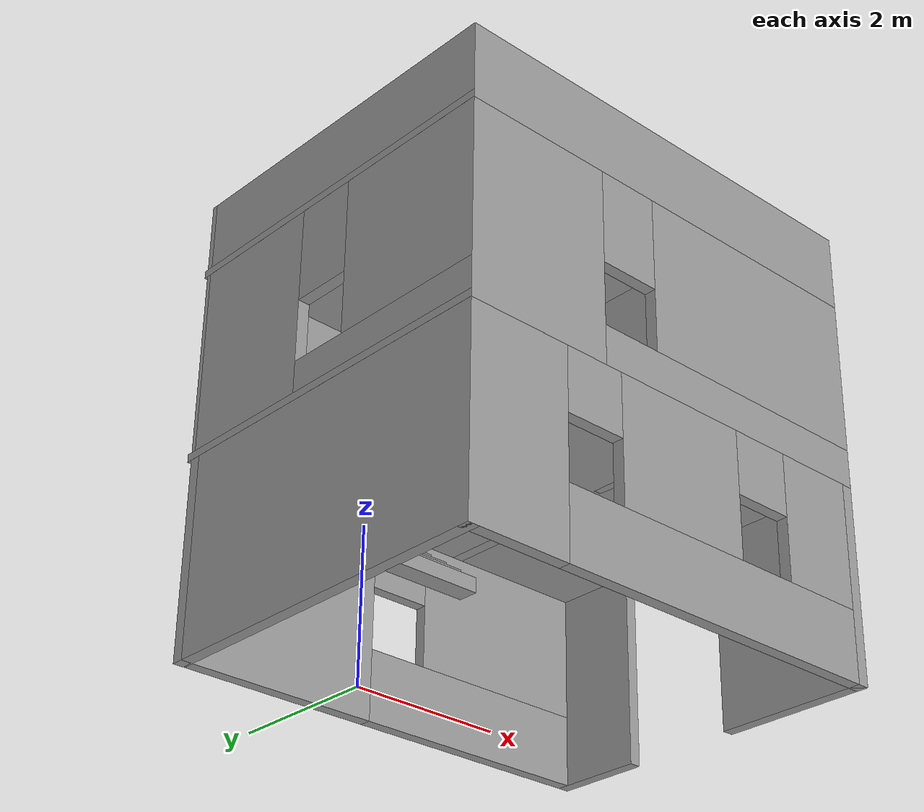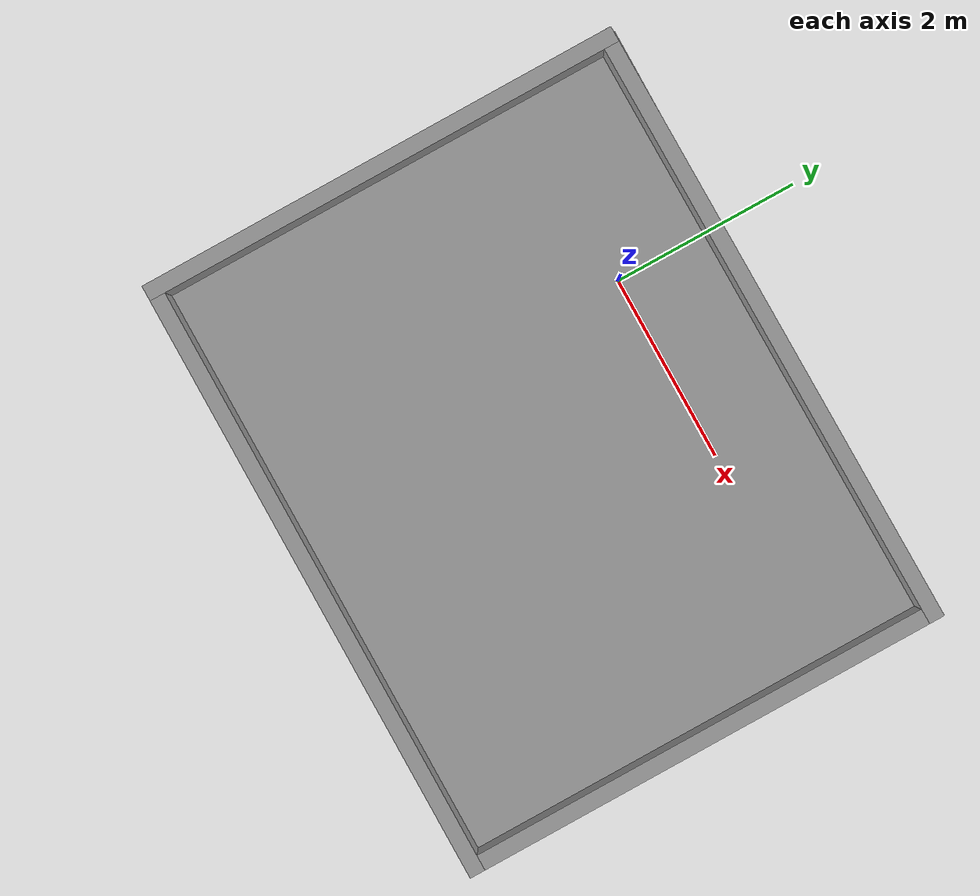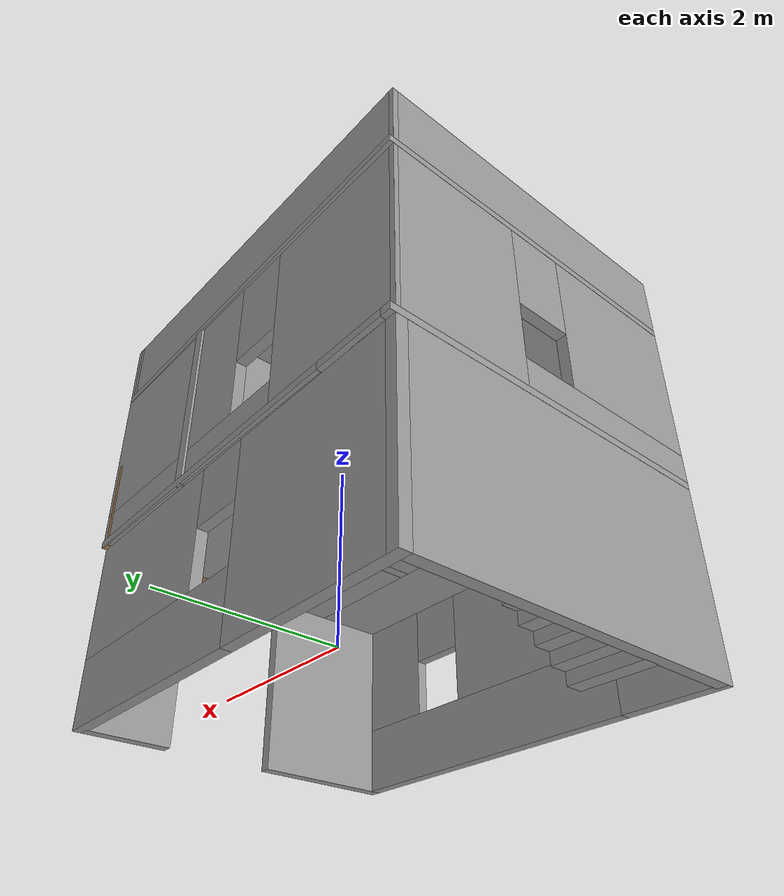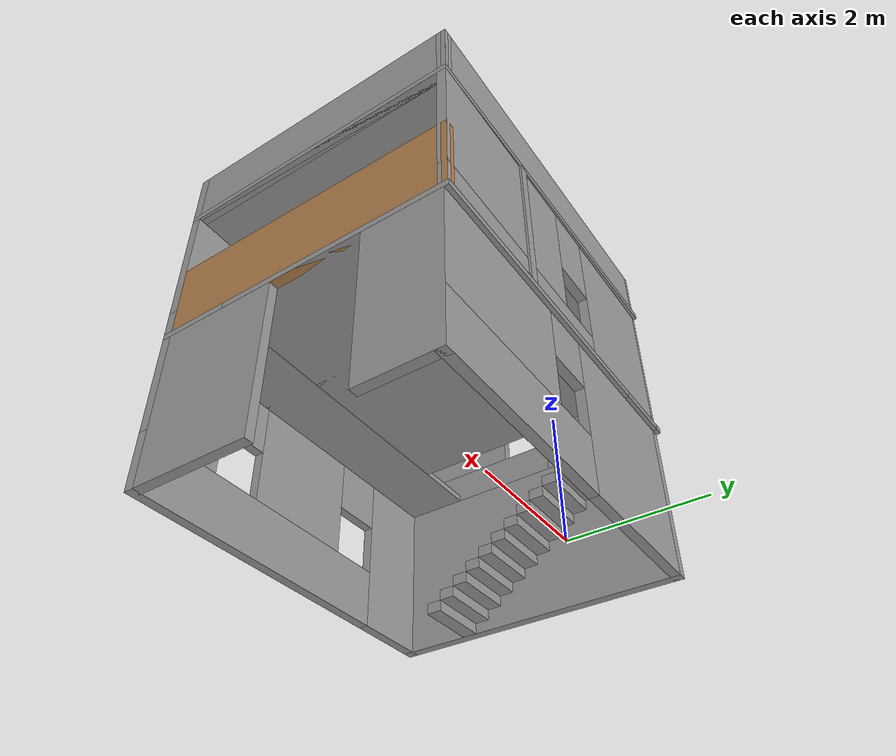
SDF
<?xml version='1.0'?>
<sdf version='1.7'>
  <model name='fahishahouse'>
    <pose>1.125 -1.47472 0 0 -0 0</pose>
    <link name='Floor_1'>
      <pose>0 0 2.5 0 -0 0</pose>
      <visual name='Floor_1_Visual_0'>
        <pose>-2.931 0 0.05 0 -0 0</pose>
        <geometry>
          <box>
            <size>0.139352 4.82055 0.1</size>
          </box>
        </geometry>
        <material>
          <script>
            <uri>file://media/materials/scripts/gazebo.material</uri>
            <name>Gazebo/Grey</name>
          </script>
          <ambient>1 1 1 1</ambient>
        </material>
        <meta>
          <layer>1</layer>
        </meta>
      </visual>
      <collision name='Floor_1_Collision_0'>
        <geometry>
          <box>
            <size>0.139352 4.82055 0.1</size>
          </box>
        </geometry>
        <pose>-2.931 0 0.05 0 -0 0</pose>
      </collision>
      <visual name='Floor_1_Visual_1'>
        <pose>0.069676 -1.84285 0.05 0 -0 0</pose>
        <geometry>
          <box>
            <size>5.862 1.13485 0.1</size>
          </box>
        </geometry>
        <material>
          <script>
            <uri>file://media/materials/scripts/gazebo.material</uri>
            <name>Gazebo/Grey</name>
          </script>
          <ambient>1 1 1 1</ambient>
        </material>
        <meta>
          <layer>1</layer>
        </meta>
      </visual>
      <collision name='Floor_1_Collision_1'>
        <geometry>
          <box>
            <size>5.862 1.13485 0.1</size>
          </box>
        </geometry>
        <pose>0.069676 -1.84285 0.05 0 -0 0</pose>
      </collision>
      <visual name='Floor_1_Visual_2'>
        <pose>0.569676 0.567426 0.05 0 -0 0</pose>
        <geometry>
          <box>
            <size>4.862 3.6857 0.1</size>
          </box>
        </geometry>
        <material>
          <script>
            <uri>file://media/materials/scripts/gazebo.material</uri>
            <name>Gazebo/Grey</name>
          </script>
          <ambient>1 1 1 1</ambient>
        </material>
        <meta>
          <layer>1</layer>
        </meta>
      </visual>
      <collision name='Floor_1_Collision_2'>
        <geometry>
          <box>
            <size>4.862 3.6857 0.1</size>
          </box>
        </geometry>
        <pose>0.569676 0.567426 0.05 0 -0 0</pose>
      </collision>
      <visual name='Floor_1_Visual_3'>
        <pose>-2.36132 2.31743 0.05 0 -0 0</pose>
        <geometry>
          <box>
            <size>1 0.185703 0.1</size>
          </box>
        </geometry>
        <material>
          <script>
            <uri>file://media/materials/scripts/gazebo.material</uri>
            <name>Gazebo/Grey</name>
          </script>
          <ambient>1 1 1 1</ambient>
        </material>
        <meta>
          <layer>1</layer>
        </meta>
      </visual>
      <collision name='Floor_1_Collision_3'>
        <geometry>
          <box>
            <size>1 0.185703 0.1</size>
          </box>
        </geometry>
        <pose>-2.36132 2.31743 0.05 0 -0 0</pose>
      </collision>
    </link>
    <link name='Floor_2'>
      <collision name='Floor_2_Collision'>
        <geometry>
          <box>
            <size>6.00135 4.80368 0.1</size>
          </box>
        </geometry>
        <pose>0 0 0.05 0 -0 0</pose>
      </collision>
      <visual name='Floor_2_Visual'>
        <pose>0 0 0.05 0 -0 0</pose>
        <geometry>
          <box>
            <size>6.00135 4.80368 0.1</size>
          </box>
        </geometry>
        <material>
          <script>
            <uri>file://media/materials/scripts/gazebo.material</uri>
            <name>Gazebo/Grey</name>
          </script>
          <ambient>1 1 1 1</ambient>
        </material>
        <meta>
          <layer>2</layer>
        </meta>
      </visual>
      <pose>0 -0.008439 5 0 -0 0</pose>
    </link>
    <link name='Stairs_0'>
      <visual name='Stairs_0_Visual_0'>
        <pose>-2.36132 -1.15876 0.083333 0 -0 -3.14159</pose>
        <geometry>
          <box>
            <size>1 0.233333 0.166667</size>
          </box>
        </geometry>
        <material>
          <script>
            <uri>file://media/materials/scripts/gazebo.material</uri>
            <name>Gazebo/Grey</name>
          </script>
          <ambient>1 1 1 1</ambient>
        </material>
        <meta>
          <layer>0</layer>
        </meta>
      </visual>
      <collision name='Stairs_0_Collision_0'>
        <geometry>
          <box>
            <size>1 0.233333 0.166667</size>
          </box>
        </geometry>
        <pose>-2.36132 -1.15876 0.083333 0 -0 -3.14159</pose>
      </collision>
      <visual name='Stairs_0_Visual_1'>
        <pose>-2.36132 -0.925426 0.25 0 -0 -3.14159</pose>
        <geometry>
          <box>
            <size>1 0.233333 0.166667</size>
          </box>
        </geometry>
        <material>
          <script>
            <uri>file://media/materials/scripts/gazebo.material</uri>
            <name>Gazebo/Grey</name>
          </script>
          <ambient>1 1 1 1</ambient>
        </material>
        <meta>
          <layer>0</layer>
        </meta>
      </visual>
      <collision name='Stairs_0_Collision_1'>
        <geometry>
          <box>
            <size>1 0.233333 0.166667</size>
          </box>
        </geometry>
        <pose>-2.36132 -0.925426 0.25 0 -0 -3.14159</pose>
      </collision>
      <visual name='Stairs_0_Visual_2'>
        <pose>-2.36132 -0.692092 0.416667 0 -0 -3.14159</pose>
        <geometry>
          <box>
            <size>1 0.233333 0.166667</size>
          </box>
        </geometry>
        <material>
          <script>
            <uri>file://media/materials/scripts/gazebo.material</uri>
            <name>Gazebo/Grey</name>
          </script>
          <ambient>1 1 1 1</ambient>
        </material>
        <meta>
          <layer>0</layer>
        </meta>
      </visual>
      <collision name='Stairs_0_Collision_2'>
        <geometry>
          <box>
            <size>1 0.233333 0.166667</size>
          </box>
        </geometry>
        <pose>-2.36132 -0.692092 0.416667 0 -0 -3.14159</pose>
      </collision>
      <visual name='Stairs_0_Visual_3'>
        <pose>-2.36132 -0.458759 0.583333 0 -0 -3.14159</pose>
        <geometry>
          <box>
            <size>1 0.233333 0.166667</size>
          </box>
        </geometry>
        <material>
          <script>
            <uri>file://media/materials/scripts/gazebo.material</uri>
            <name>Gazebo/Grey</name>
          </script>
          <ambient>1 1 1 1</ambient>
        </material>
        <meta>
          <layer>0</layer>
        </meta>
      </visual>
      <collision name='Stairs_0_Collision_3'>
        <geometry>
          <box>
            <size>1 0.233333 0.166667</size>
          </box>
        </geometry>
        <pose>-2.36132 -0.458759 0.583333 0 -0 -3.14159</pose>
      </collision>
      <visual name='Stairs_0_Visual_4'>
        <pose>-2.36132 -0.225426 0.75 0 -0 -3.14159</pose>
        <geometry>
          <box>
            <size>1 0.233333 0.166667</size>
          </box>
        </geometry>
        <material>
          <script>
            <uri>file://media/materials/scripts/gazebo.material</uri>
            <name>Gazebo/Grey</name>
          </script>
          <ambient>1 1 1 1</ambient>
        </material>
        <meta>
          <layer>0</layer>
        </meta>
      </visual>
      <collision name='Stairs_0_Collision_4'>
        <geometry>
          <box>
            <size>1 0.233333 0.166667</size>
          </box>
        </geometry>
        <pose>-2.36132 -0.225426 0.75 0 -0 -3.14159</pose>
      </collision>
      <visual name='Stairs_0_Visual_5'>
        <pose>-2.36132 0.007908 0.916667 0 -0 -3.14159</pose>
        <geometry>
          <box>
            <size>1 0.233333 0.166667</size>
          </box>
        </geometry>
        <material>
          <script>
            <uri>file://media/materials/scripts/gazebo.material</uri>
            <name>Gazebo/Grey</name>
          </script>
          <ambient>1 1 1 1</ambient>
        </material>
        <meta>
          <layer>0</layer>
        </meta>
      </visual>
      <collision name='Stairs_0_Collision_5'>
        <geometry>
          <box>
            <size>1 0.233333 0.166667</size>
          </box>
        </geometry>
        <pose>-2.36132 0.007908 0.916667 0 -0 -3.14159</pose>
      </collision>
      <visual name='Stairs_0_Visual_6'>
        <pose>-2.36132 0.241241 1.08333 0 -0 -3.14159</pose>
        <geometry>
          <box>
            <size>1 0.233333 0.166667</size>
          </box>
        </geometry>
        <material>
          <script>
            <uri>file://media/materials/scripts/gazebo.material</uri>
            <name>Gazebo/Grey</name>
          </script>
          <ambient>1 1 1 1</ambient>
        </material>
        <meta>
          <layer>0</layer>
        </meta>
      </visual>
      <collision name='Stairs_0_Collision_6'>
        <geometry>
          <box>
            <size>1 0.233333 0.166667</size>
          </box>
        </geometry>
        <pose>-2.36132 0.241241 1.08333 0 -0 -3.14159</pose>
      </collision>
      <visual name='Stairs_0_Visual_7'>
        <pose>-2.36132 0.474574 1.25 0 -0 -3.14159</pose>
        <geometry>
          <box>
            <size>1 0.233333 0.166667</size>
          </box>
        </geometry>
        <material>
          <script>
            <uri>file://media/materials/scripts/gazebo.material</uri>
            <name>Gazebo/Grey</name>
          </script>
          <ambient>1 1 1 1</ambient>
        </material>
        <meta>
          <layer>0</layer>
        </meta>
      </visual>
      <collision name='Stairs_0_Collision_7'>
        <geometry>
          <box>
            <size>1 0.233333 0.166667</size>
          </box>
        </geometry>
        <pose>-2.36132 0.474574 1.25 0 -0 -3.14159</pose>
      </collision>
      <visual name='Stairs_0_Visual_8'>
        <pose>-2.36132 0.707908 1.41667 0 -0 -3.14159</pose>
        <geometry>
          <box>
            <size>1 0.233333 0.166667</size>
          </box>
        </geometry>
        <material>
          <script>
            <uri>file://media/materials/scripts/gazebo.material</uri>
            <name>Gazebo/Grey</name>
          </script>
          <ambient>1 1 1 1</ambient>
        </material>
        <meta>
          <layer>0</layer>
        </meta>
      </visual>
      <collision name='Stairs_0_Collision_8'>
        <geometry>
          <box>
            <size>1 0.233333 0.166667</size>
          </box>
        </geometry>
        <pose>-2.36132 0.707908 1.41667 0 -0 -3.14159</pose>
      </collision>
      <visual name='Stairs_0_Visual_9'>
        <pose>-2.36132 0.941241 1.58333 0 -0 -3.14159</pose>
        <geometry>
          <box>
            <size>1 0.233333 0.166667</size>
          </box>
        </geometry>
        <material>
          <script>
            <uri>file://media/materials/scripts/gazebo.material</uri>
            <name>Gazebo/Grey</name>
          </script>
          <ambient>1 1 1 1</ambient>
        </material>
        <meta>
          <layer>0</layer>
        </meta>
      </visual>
      <collision name='Stairs_0_Collision_9'>
        <geometry>
          <box>
            <size>1 0.233333 0.166667</size>
          </box>
        </geometry>
        <pose>-2.36132 0.941241 1.58333 0 -0 -3.14159</pose>
      </collision>
      <visual name='Stairs_0_Visual_10'>
        <pose>-2.36132 1.17457 1.75 0 -0 -3.14159</pose>
        <geometry>
          <box>
            <size>1 0.233333 0.166667</size>
          </box>
        </geometry>
        <material>
          <script>
            <uri>file://media/materials/scripts/gazebo.material</uri>
            <name>Gazebo/Grey</name>
          </script>
          <ambient>1 1 1 1</ambient>
        </material>
        <meta>
          <layer>0</layer>
        </meta>
      </visual>
      <collision name='Stairs_0_Collision_10'>
        <geometry>
          <box>
            <size>1 0.233333 0.166667</size>
          </box>
        </geometry>
        <pose>-2.36132 1.17457 1.75 0 -0 -3.14159</pose>
      </collision>
      <visual name='Stairs_0_Visual_11'>
        <pose>-2.36132 1.40791 1.91667 0 -0 -3.14159</pose>
        <geometry>
          <box>
            <size>1 0.233333 0.166667</size>
          </box>
        </geometry>
        <material>
          <script>
            <uri>file://media/materials/scripts/gazebo.material</uri>
            <name>Gazebo/Grey</name>
          </script>
          <ambient>1 1 1 1</ambient>
        </material>
        <meta>
          <layer>0</layer>
        </meta>
      </visual>
      <collision name='Stairs_0_Collision_11'>
        <geometry>
          <box>
            <size>1 0.233333 0.166667</size>
          </box>
        </geometry>
        <pose>-2.36132 1.40791 1.91667 0 -0 -3.14159</pose>
      </collision>
      <visual name='Stairs_0_Visual_12'>
        <pose>-2.36132 1.64124 2.08333 0 -0 -3.14159</pose>
        <geometry>
          <box>
            <size>1 0.233333 0.166667</size>
          </box>
        </geometry>
        <material>
          <script>
            <uri>file://media/materials/scripts/gazebo.material</uri>
            <name>Gazebo/Grey</name>
          </script>
          <ambient>1 1 1 1</ambient>
        </material>
        <meta>
          <layer>0</layer>
        </meta>
      </visual>
      <collision name='Stairs_0_Collision_12'>
        <geometry>
          <box>
            <size>1 0.233333 0.166667</size>
          </box>
        </geometry>
        <pose>-2.36132 1.64124 2.08333 0 -0 -3.14159</pose>
      </collision>
      <visual name='Stairs_0_Visual_13'>
        <pose>-2.36132 1.87457 2.25 0 -0 -3.14159</pose>
        <geometry>
          <box>
            <size>1 0.233333 0.166667</size>
          </box>
        </geometry>
        <material>
          <script>
            <uri>file://media/materials/scripts/gazebo.material</uri>
            <name>Gazebo/Grey</name>
          </script>
          <ambient>1 1 1 1</ambient>
        </material>
        <meta>
          <layer>0</layer>
        </meta>
      </visual>
      <collision name='Stairs_0_Collision_13'>
        <geometry>
          <box>
            <size>1 0.233333 0.166667</size>
          </box>
        </geometry>
        <pose>-2.36132 1.87457 2.25 0 -0 -3.14159</pose>
      </collision>
      <visual name='Stairs_0_Visual_14'>
        <pose>-2.36132 2.10791 2.41667 0 -0 -3.14159</pose>
        <geometry>
          <box>
            <size>1 0.233333 0.166667</size>
          </box>
        </geometry>
        <material>
          <script>
            <uri>file://media/materials/scripts/gazebo.material</uri>
            <name>Gazebo/Grey</name>
          </script>
          <ambient>1 1 1 1</ambient>
        </material>
        <meta>
          <layer>0</layer>
        </meta>
      </visual>
      <collision name='Stairs_0_Collision_14'>
        <geometry>
          <box>
            <size>1 0.233333 0.166667</size>
          </box>
        </geometry>
        <pose>-2.36132 2.10791 2.41667 0 -0 -3.14159</pose>
      </collision>
    </link>
    <link name='Wall_1'>
      <collision name='Wall_1_Collision'>
        <geometry>
          <box>
            <size>4.75 0.15 2.5</size>
          </box>
        </geometry>
        <pose>0 0 1.25 0 -0 0</pose>
      </collision>
      <visual name='Wall_1_Visual'>
        <pose>0 0 1.25 0 -0 0</pose>
        <geometry>
          <box>
            <size>4.75 0.15 2.5</size>
          </box>
        </geometry>
        <material>
          <script>
            <uri>file://media/materials/scripts/gazebo.material</uri>
            <name>Gazebo/Grey</name>
          </script>
          <ambient>1 1 1 1</ambient>
        </material>
        <meta>
          <layer>0</layer>
        </meta>
      </visual>
      <pose>-2.925 -0.035278 0 0 -0 -1.5708</pose>
    </link>
    <link name='Wall_11'>
      <pose>-2.925 -0.035278 2.5 0 -0 -1.5708</pose>
      <visual name='Wall_11_Visual_0'>
        <pose>-1.44185 0 1.25 0 -0 0</pose>
        <geometry>
          <box>
            <size>1.8663 0.15 2.5</size>
          </box>
        </geometry>
        <material>
          <script>
            <uri>file://media/materials/scripts/gazebo.material</uri>
            <name>Gazebo/Grey</name>
          </script>
          <ambient>1 1 1 1</ambient>
        </material>
        <meta>
          <layer>1</layer>
        </meta>
      </visual>
      <collision name='Wall_11_Collision_0'>
        <geometry>
          <box>
            <size>1.8663 0.15 2.5</size>
          </box>
        </geometry>
        <pose>-1.44185 0 1.25 0 -0 0</pose>
      </collision>
      <visual name='Wall_11_Visual_1'>
        <pose>0.93315 0 0.25 0 -0 0</pose>
        <geometry>
          <box>
            <size>2.8837 0.15 0.5</size>
          </box>
        </geometry>
        <material>
          <script>
            <uri>file://media/materials/scripts/gazebo.material</uri>
            <name>Gazebo/Grey</name>
          </script>
          <ambient>1 1 1 1</ambient>
        </material>
        <meta>
          <layer>1</layer>
        </meta>
      </visual>
      <collision name='Wall_11_Collision_1'>
        <geometry>
          <box>
            <size>2.8837 0.15 0.5</size>
          </box>
        </geometry>
        <pose>0.93315 0 0.25 0 -0 0</pose>
      </collision>
      <visual name='Wall_11_Visual_2'>
        <pose>1.33315 0 1.5 0 -0 0</pose>
        <geometry>
          <box>
            <size>2.0837 0.15 2</size>
          </box>
        </geometry>
        <material>
          <script>
            <uri>file://media/materials/scripts/gazebo.material</uri>
            <name>Gazebo/Grey</name>
          </script>
          <ambient>1 1 1 1</ambient>
        </material>
        <meta>
          <layer>1</layer>
        </meta>
      </visual>
      <collision name='Wall_11_Collision_2'>
        <geometry>
          <box>
            <size>2.0837 0.15 2</size>
          </box>
        </geometry>
        <pose>1.33315 0 1.5 0 -0 0</pose>
      </collision>
      <visual name='Wall_11_Visual_3'>
        <pose>-0.108699 0 1.9 0 -0 0</pose>
        <geometry>
          <box>
            <size>0.8 0.15 1.2</size>
          </box>
        </geometry>
        <material>
          <script>
            <uri>file://media/materials/scripts/gazebo.material</uri>
            <name>Gazebo/Grey</name>
          </script>
          <ambient>1 1 1 1</ambient>
        </material>
        <meta>
          <layer>1</layer>
        </meta>
      </visual>
      <collision name='Wall_11_Collision_3'>
        <geometry>
          <box>
            <size>0.8 0.15 1.2</size>
          </box>
        </geometry>
        <pose>-0.108699 0 1.9 0 -0 0</pose>
      </collision>
    </link>
    <link name='Wall_12'>
      <pose>0 -2.33528 2.5 0 -0 0</pose>
      <visual name='Wall_12_Visual_0'>
        <pose>-2.03885 0 1.25 0 -0 0</pose>
        <geometry>
          <box>
            <size>1.9223 0.15 2.5</size>
          </box>
        </geometry>
        <material>
          <script>
            <uri>file://media/materials/scripts/gazebo.material</uri>
            <name>Gazebo/Grey</name>
          </script>
          <ambient>1 1 1 1</ambient>
        </material>
        <meta>
          <layer>1</layer>
        </meta>
      </visual>
      <collision name='Wall_12_Collision_0'>
        <geometry>
          <box>
            <size>1.9223 0.15 2.5</size>
          </box>
        </geometry>
        <pose>-2.03885 0 1.25 0 -0 0</pose>
      </collision>
      <visual name='Wall_12_Visual_1'>
        <pose>0.96115 0 0.25 0 -0 0</pose>
        <geometry>
          <box>
            <size>4.0777 0.15 0.5</size>
          </box>
        </geometry>
        <material>
          <script>
            <uri>file://media/materials/scripts/gazebo.material</uri>
            <name>Gazebo/Grey</name>
          </script>
          <ambient>1 1 1 1</ambient>
        </material>
        <meta>
          <layer>1</layer>
        </meta>
      </visual>
      <collision name='Wall_12_Collision_1'>
        <geometry>
          <box>
            <size>4.0777 0.15 0.5</size>
          </box>
        </geometry>
        <pose>0.96115 0 0.25 0 -0 0</pose>
      </collision>
      <visual name='Wall_12_Visual_2'>
        <pose>1.36115 0 1.5 0 -0 0</pose>
        <geometry>
          <box>
            <size>3.2777 0.15 2</size>
          </box>
        </geometry>
        <material>
          <script>
            <uri>file://media/materials/scripts/gazebo.material</uri>
            <name>Gazebo/Grey</name>
          </script>
          <ambient>1 1 1 1</ambient>
        </material>
        <meta>
          <layer>1</layer>
        </meta>
      </visual>
      <collision name='Wall_12_Collision_2'>
        <geometry>
          <box>
            <size>3.2777 0.15 2</size>
          </box>
        </geometry>
        <pose>1.36115 0 1.5 0 -0 0</pose>
      </collision>
      <visual name='Wall_12_Visual_3'>
        <pose>-0.677699 0 1.9 0 -0 0</pose>
        <geometry>
          <box>
            <size>0.8 0.15 1.2</size>
          </box>
        </geometry>
        <material>
          <script>
            <uri>file://media/materials/scripts/gazebo.material</uri>
            <name>Gazebo/Grey</name>
          </script>
          <ambient>1 1 1 1</ambient>
        </material>
        <meta>
          <layer>1</layer>
        </meta>
      </visual>
      <collision name='Wall_12_Collision_3'>
        <geometry>
          <box>
            <size>0.8 0.15 1.2</size>
          </box>
        </geometry>
        <pose>-0.677699 0 1.9 0 -0 0</pose>
      </collision>
    </link>
    <link name='Wall_13'>
      <pose>0 2.29122 2.5 0 -0 0.00906</pose>
      <visual name='Wall_13_Visual_0'>
        <pose>-1.94671 0 1.25 0 -0 0</pose>
        <geometry>
          <box>
            <size>2.10659 0.15 2.5</size>
          </box>
        </geometry>
        <material>
          <script>
            <uri>file://media/materials/scripts/gazebo.material</uri>
            <name>Gazebo/Grey</name>
          </script>
          <ambient>1 1 1 1</ambient>
        </material>
        <meta>
          <layer>1</layer>
        </meta>
      </visual>
      <collision name='Wall_13_Collision_0'>
        <geometry>
          <box>
            <size>2.10659 0.15 2.5</size>
          </box>
        </geometry>
        <pose>-1.94671 0 1.25 0 -0 0</pose>
      </collision>
      <visual name='Wall_13_Visual_1'>
        <pose>1.05329 0 0.25 0 -0 0</pose>
        <geometry>
          <box>
            <size>3.89341 0.15 0.5</size>
          </box>
        </geometry>
        <material>
          <script>
            <uri>file://media/materials/scripts/gazebo.material</uri>
            <name>Gazebo/Grey</name>
          </script>
          <ambient>1 1 1 1</ambient>
        </material>
        <meta>
          <layer>1</layer>
        </meta>
      </visual>
      <collision name='Wall_13_Collision_1'>
        <geometry>
          <box>
            <size>3.89341 0.15 0.5</size>
          </box>
        </geometry>
        <pose>1.05329 0 0.25 0 -0 0</pose>
      </collision>
      <visual name='Wall_13_Visual_2'>
        <pose>1.45329 0 1.5 0 -0 0</pose>
        <geometry>
          <box>
            <size>3.09341 0.15 2</size>
          </box>
        </geometry>
        <material>
          <script>
            <uri>file://media/materials/scripts/gazebo.material</uri>
            <name>Gazebo/Grey</name>
          </script>
          <ambient>1 1 1 1</ambient>
        </material>
        <meta>
          <layer>1</layer>
        </meta>
      </visual>
      <collision name='Wall_13_Collision_2'>
        <geometry>
          <box>
            <size>3.09341 0.15 2</size>
          </box>
        </geometry>
        <pose>1.45329 0 1.5 0 -0 0</pose>
      </collision>
      <visual name='Wall_13_Visual_3'>
        <pose>-0.493414 0 1.9 0 -0 0</pose>
        <geometry>
          <box>
            <size>0.8 0.15 1.2</size>
          </box>
        </geometry>
        <material>
          <script>
            <uri>file://media/materials/scripts/gazebo.material</uri>
            <name>Gazebo/Grey</name>
          </script>
          <ambient>1 1 1 1</ambient>
        </material>
        <meta>
          <layer>1</layer>
        </meta>
      </visual>
      <collision name='Wall_13_Collision_3'>
        <geometry>
          <box>
            <size>0.8 0.15 1.2</size>
          </box>
        </geometry>
        <pose>-0.493414 0 1.9 0 -0 0</pose>
      </collision>
    </link>
    <link name='Wall_14'>
      <collision name='Wall_14_Collision'>
        <geometry>
          <box>
            <size>4.75 0.15 1.3</size>
          </box>
        </geometry>
        <pose>0 0 0.65 0 -0 0</pose>
      </collision>
      <visual name='Wall_14_Visual'>
        <pose>0 0 0.65 0 -0 0</pose>
        <geometry>
          <box>
            <size>4.75 0.15 1.3</size>
          </box>
        </geometry>
        <material>
          <script>
            <uri>file://media/materials/scripts/gazebo.material</uri>
            <name>Gazebo/Wood</name>
          </script>
          <ambient>1 1 1 1</ambient>
        </material>
        <meta>
          <layer>1</layer>
        </meta>
      </visual>
      <pose>2.925 0.017722 2.5 0 -0 -1.5708</pose>
    </link>
    <link name='Wall_15'>
      <pose>0.952941 0.035278 2.5 0 -0 -1.5708</pose>
      <visual name='Wall_15_Visual_0'>
        <pose>-1.47102 0 1.25 0 -0 0</pose>
        <geometry>
          <box>
            <size>1.80795 0.15 2.5</size>
          </box>
        </geometry>
        <material>
          <script>
            <uri>file://media/materials/scripts/gazebo.material</uri>
            <name>Gazebo/Grey</name>
          </script>
          <ambient>1 1 1 1</ambient>
        </material>
        <meta>
          <layer>1</layer>
        </meta>
      </visual>
      <collision name='Wall_15_Collision_0'>
        <geometry>
          <box>
            <size>1.80795 0.15 2.5</size>
          </box>
        </geometry>
        <pose>-1.47102 0 1.25 0 -0 0</pose>
      </collision>
      <visual name='Wall_15_Visual_1'>
        <pose>1.35398 0 1.25 0 -0 0</pose>
        <geometry>
          <box>
            <size>2.04205 0.15 2.5</size>
          </box>
        </geometry>
        <material>
          <script>
            <uri>file://media/materials/scripts/gazebo.material</uri>
            <name>Gazebo/Grey</name>
          </script>
          <ambient>1 1 1 1</ambient>
        </material>
        <meta>
          <layer>1</layer>
        </meta>
      </visual>
      <collision name='Wall_15_Collision_1'>
        <geometry>
          <box>
            <size>2.04205 0.15 2.5</size>
          </box>
        </geometry>
        <pose>1.35398 0 1.25 0 -0 0</pose>
      </collision>
    </link>
    <link name='Wall_17'>
      <collision name='Wall_17_Collision'>
        <geometry>
          <box>
            <size>4.75 0.15 1</size>
          </box>
        </geometry>
        <pose>0 0 0.5 0 -0 0</pose>
      </collision>
      <visual name='Wall_17_Visual'>
        <pose>0 0 0.5 0 -0 0</pose>
        <geometry>
          <box>
            <size>4.75 0.15 1</size>
          </box>
        </geometry>
        <material>
          <script>
            <uri>file://media/materials/scripts/gazebo.material</uri>
            <name>Gazebo/Grey</name>
          </script>
          <ambient>1 1 1 1</ambient>
        </material>
        <meta>
          <layer>2</layer>
        </meta>
      </visual>
      <pose>-2.925 -0.035278 5 0 -0 -1.5708</pose>
    </link>
    <link name='Wall_18'>
      <collision name='Wall_18_Collision'>
        <geometry>
          <box>
            <size>6 0.15 1</size>
          </box>
        </geometry>
        <pose>0 0 0.5 0 -0 0</pose>
      </collision>
      <visual name='Wall_18_Visual'>
        <pose>0 0 0.5 0 -0 0</pose>
        <geometry>
          <box>
            <size>6 0.15 1</size>
          </box>
        </geometry>
        <material>
          <script>
            <uri>file://media/materials/scripts/gazebo.material</uri>
            <name>Gazebo/Grey</name>
          </script>
          <ambient>1 1 1 1</ambient>
        </material>
        <meta>
          <layer>2</layer>
        </meta>
      </visual>
      <pose>0 -2.33528 5 0 -0 0</pose>
    </link>
    <link name='Wall_19'>
      <collision name='Wall_19_Collision'>
        <geometry>
          <box>
            <size>6.00024 0.15 1</size>
          </box>
        </geometry>
        <pose>0 0 0.5 0 -0 0</pose>
      </collision>
      <visual name='Wall_19_Visual'>
        <pose>0 0 0.5 0 -0 0</pose>
        <geometry>
          <box>
            <size>6.00024 0.15 1</size>
          </box>
        </geometry>
        <material>
          <script>
            <uri>file://media/materials/scripts/gazebo.material</uri>
            <name>Gazebo/Grey</name>
          </script>
          <ambient>1 1 1 1</ambient>
        </material>
        <meta>
          <layer>2</layer>
        </meta>
      </visual>
      <pose>0 2.29122 5 0 -0 0.00906</pose>
    </link>
    <link name='Wall_2'>
      <pose>0 -2.33528 0 0 -0 0</pose>
      <visual name='Wall_2_Visual_0'>
        <pose>-2.32835 0 1.25 0 -0 0</pose>
        <geometry>
          <box>
            <size>1.3433 0.15 2.5</size>
          </box>
        </geometry>
        <material>
          <script>
            <uri>file://media/materials/scripts/gazebo.material</uri>
            <name>Gazebo/Grey</name>
          </script>
          <ambient>1 1 1 1</ambient>
        </material>
        <meta>
          <layer>0</layer>
        </meta>
      </visual>
      <collision name='Wall_2_Collision_0'>
        <geometry>
          <box>
            <size>1.3433 0.15 2.5</size>
          </box>
        </geometry>
        <pose>-2.32835 0 1.25 0 -0 0</pose>
      </collision>
      <visual name='Wall_2_Visual_1'>
        <pose>0.671652 0 0.45 0 -0 0</pose>
        <geometry>
          <box>
            <size>4.6567 0.15 0.9</size>
          </box>
        </geometry>
        <material>
          <script>
            <uri>file://media/materials/scripts/gazebo.material</uri>
            <name>Gazebo/Grey</name>
          </script>
          <ambient>1 1 1 1</ambient>
        </material>
        <meta>
          <layer>0</layer>
        </meta>
      </visual>
      <collision name='Wall_2_Collision_1'>
        <geometry>
          <box>
            <size>4.6567 0.15 0.9</size>
          </box>
        </geometry>
        <pose>0.671652 0 0.45 0 -0 0</pose>
      </collision>
      <visual name='Wall_2_Visual_2'>
        <pose>0.058336 0 1.7 0 -0 0</pose>
        <geometry>
          <box>
            <size>1.83007 0.15 1.6</size>
          </box>
        </geometry>
        <material>
          <script>
            <uri>file://media/materials/scripts/gazebo.material</uri>
            <name>Gazebo/Grey</name>
          </script>
          <ambient>1 1 1 1</ambient>
        </material>
        <meta>
          <layer>0</layer>
        </meta>
      </visual>
      <collision name='Wall_2_Collision_2'>
        <geometry>
          <box>
            <size>1.83007 0.15 1.6</size>
          </box>
        </geometry>
        <pose>0.058336 0 1.7 0 -0 0</pose>
      </collision>
      <visual name='Wall_2_Visual_3'>
        <pose>2.38668 0 1.7 0 -0 0</pose>
        <geometry>
          <box>
            <size>1.22663 0.15 1.6</size>
          </box>
        </geometry>
        <material>
          <script>
            <uri>file://media/materials/scripts/gazebo.material</uri>
            <name>Gazebo/Grey</name>
          </script>
          <ambient>1 1 1 1</ambient>
        </material>
        <meta>
          <layer>0</layer>
        </meta>
      </visual>
      <collision name='Wall_2_Collision_3'>
        <geometry>
          <box>
            <size>1.22663 0.15 1.6</size>
          </box>
        </geometry>
        <pose>2.38668 0 1.7 0 -0 0</pose>
      </collision>
      <visual name='Wall_2_Visual_4'>
        <pose>-1.2567 0 2.1 0 -0 0</pose>
        <geometry>
          <box>
            <size>0.8 0.15 0.8</size>
          </box>
        </geometry>
        <material>
          <script>
            <uri>file://media/materials/scripts/gazebo.material</uri>
            <name>Gazebo/Grey</name>
          </script>
          <ambient>1 1 1 1</ambient>
        </material>
        <meta>
          <layer>0</layer>
        </meta>
      </visual>
      <collision name='Wall_2_Collision_4'>
        <geometry>
          <box>
            <size>0.8 0.15 0.8</size>
          </box>
        </geometry>
        <pose>-1.2567 0 2.1 0 -0 0</pose>
      </collision>
      <visual name='Wall_2_Visual_5'>
        <pose>1.37337 0 2.1 0 -0 0</pose>
        <geometry>
          <box>
            <size>0.8 0.15 0.8</size>
          </box>
        </geometry>
        <material>
          <script>
            <uri>file://media/materials/scripts/gazebo.material</uri>
            <name>Gazebo/Grey</name>
          </script>
          <ambient>1 1 1 1</ambient>
        </material>
        <meta>
          <layer>0</layer>
        </meta>
      </visual>
      <collision name='Wall_2_Collision_5'>
        <geometry>
          <box>
            <size>0.8 0.15 0.8</size>
          </box>
        </geometry>
        <pose>1.37337 0 2.1 0 -0 0</pose>
      </collision>
    </link>
    <link name='Wall_20'>
      <collision name='Wall_20_Collision'>
        <geometry>
          <box>
            <size>4.75 0.15 1</size>
          </box>
        </geometry>
        <pose>0 0 0.5 0 -0 0</pose>
      </collision>
      <visual name='Wall_20_Visual'>
        <pose>0 0 0.5 0 -0 0</pose>
        <geometry>
          <box>
            <size>4.75 0.15 1</size>
          </box>
        </geometry>
        <material>
          <script>
            <uri>file://media/materials/scripts/gazebo.material</uri>
            <name>Gazebo/Grey</name>
          </script>
          <ambient>1 1 1 1</ambient>
        </material>
        <meta>
          <layer>2</layer>
        </meta>
      </visual>
      <pose>2.925 0.017722 5 0 -0 -1.5708</pose>
    </link>
    <link name='Wall_4'>
      <pose>0 2.26472 0 0 -0 0</pose>
      <visual name='Wall_4_Visual_0'>
        <pose>-1.68398 0 1.25 0 -0 0</pose>
        <geometry>
          <box>
            <size>2.63204 0.15 2.5</size>
          </box>
        </geometry>
        <material>
          <script>
            <uri>file://media/materials/scripts/gazebo.material</uri>
            <name>Gazebo/Grey</name>
          </script>
          <ambient>1 1 1 1</ambient>
        </material>
        <meta>
          <layer>0</layer>
        </meta>
      </visual>
      <collision name='Wall_4_Collision_0'>
        <geometry>
          <box>
            <size>2.63204 0.15 2.5</size>
          </box>
        </geometry>
        <pose>-1.68398 0 1.25 0 -0 0</pose>
      </collision>
      <visual name='Wall_4_Visual_1'>
        <pose>1.31602 0 0.45 0 -0 0</pose>
        <geometry>
          <box>
            <size>3.36796 0.15 0.9</size>
          </box>
        </geometry>
        <material>
          <script>
            <uri>file://media/materials/scripts/gazebo.material</uri>
            <name>Gazebo/Grey</name>
          </script>
          <ambient>1 1 1 1</ambient>
        </material>
        <meta>
          <layer>0</layer>
        </meta>
      </visual>
      <collision name='Wall_4_Collision_1'>
        <geometry>
          <box>
            <size>3.36796 0.15 0.9</size>
          </box>
        </geometry>
        <pose>1.31602 0 0.45 0 -0 0</pose>
      </collision>
      <visual name='Wall_4_Visual_2'>
        <pose>1.71602 0 1.7 0 -0 0</pose>
        <geometry>
          <box>
            <size>2.56797 0.15 1.6</size>
          </box>
        </geometry>
        <material>
          <script>
            <uri>file://media/materials/scripts/gazebo.material</uri>
            <name>Gazebo/Grey</name>
          </script>
          <ambient>1 1 1 1</ambient>
        </material>
        <meta>
          <layer>0</layer>
        </meta>
      </visual>
      <collision name='Wall_4_Collision_2'>
        <geometry>
          <box>
            <size>2.56797 0.15 1.6</size>
          </box>
        </geometry>
        <pose>1.71602 0 1.7 0 -0 0</pose>
      </collision>
      <visual name='Wall_4_Visual_3'>
        <pose>0.032035 0 2.1 0 -0 0</pose>
        <geometry>
          <box>
            <size>0.8 0.15 0.8</size>
          </box>
        </geometry>
        <material>
          <script>
            <uri>file://media/materials/scripts/gazebo.material</uri>
            <name>Gazebo/Grey</name>
          </script>
          <ambient>1 1 1 1</ambient>
        </material>
        <meta>
          <layer>0</layer>
        </meta>
      </visual>
      <collision name='Wall_4_Collision_3'>
        <geometry>
          <box>
            <size>0.8 0.15 0.8</size>
          </box>
        </geometry>
        <pose>0.032035 0 2.1 0 -0 0</pose>
      </collision>
    </link>
    <link name='Wall_5'>
      <pose>2.925 -0.035278 0 0 -0 -1.5708</pose>
      <visual name='Wall_5_Visual_0'>
        <pose>-1.75167 0 1.25 0 -0 0</pose>
        <geometry>
          <box>
            <size>1.24665 0.15 2.5</size>
          </box>
        </geometry>
        <material>
          <script>
            <uri>file://media/materials/scripts/gazebo.material</uri>
            <name>Gazebo/Grey</name>
          </script>
          <ambient>1 1 1 1</ambient>
        </material>
        <meta>
          <layer>0</layer>
        </meta>
      </visual>
      <collision name='Wall_5_Collision_0'>
        <geometry>
          <box>
            <size>1.24665 0.15 2.5</size>
          </box>
        </geometry>
        <pose>-1.75167 0 1.25 0 -0 0</pose>
      </collision>
      <visual name='Wall_5_Visual_1'>
        <pose>1.37333 0 1.25 0 -0 0</pose>
        <geometry>
          <box>
            <size>2.00335 0.15 2.5</size>
          </box>
        </geometry>
        <material>
          <script>
            <uri>file://media/materials/scripts/gazebo.material</uri>
            <name>Gazebo/Grey</name>
          </script>
          <ambient>1 1 1 1</ambient>
        </material>
        <meta>
          <layer>0</layer>
        </meta>
      </visual>
      <collision name='Wall_5_Collision_1'>
        <geometry>
          <box>
            <size>2.00335 0.15 2.5</size>
          </box>
        </geometry>
        <pose>1.37333 0 1.25 0 -0 0</pose>
      </collision>
    </link>
    <static>1</static>
  </model>
</sdf>
